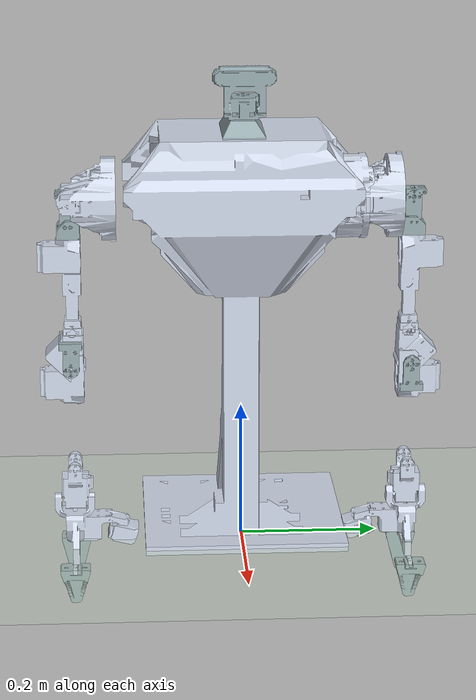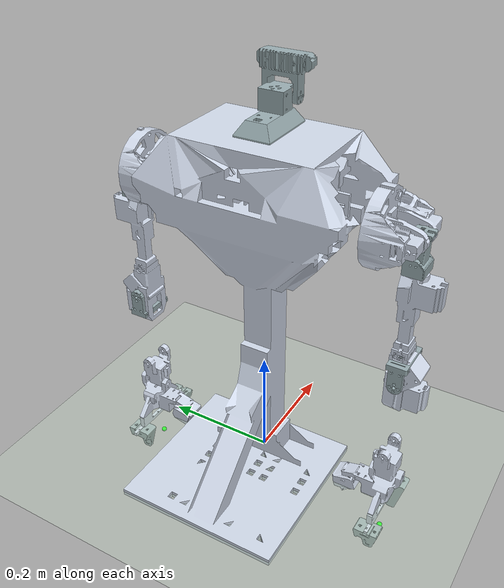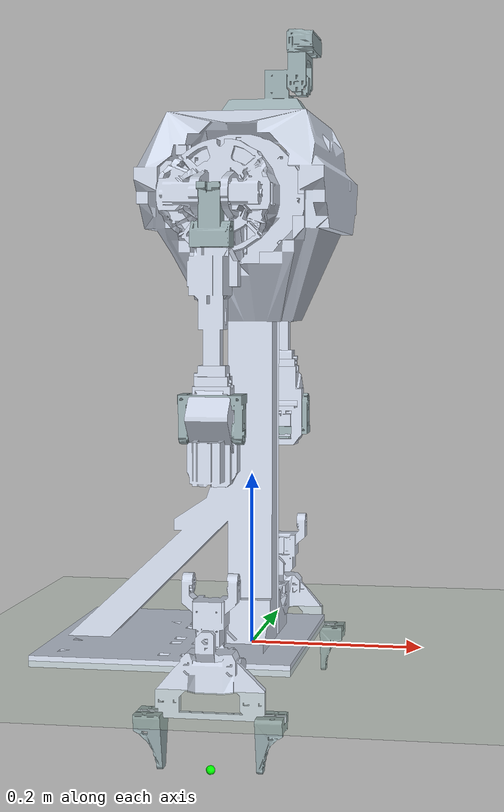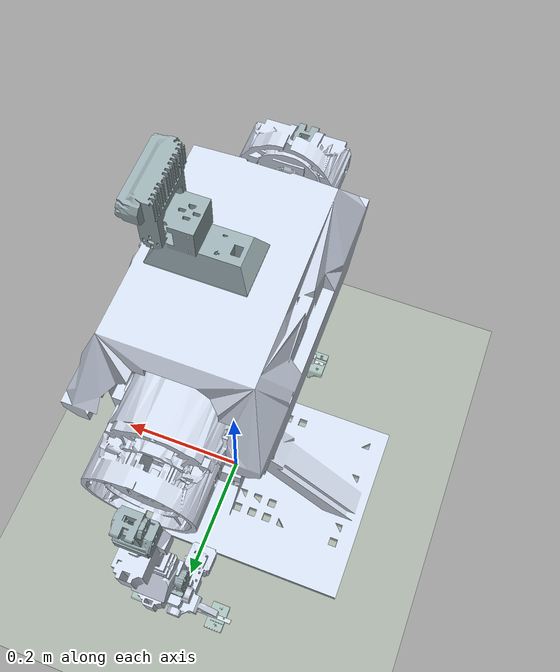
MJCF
<mujoco model="lingyue_urdf_1.0">
  <compiler angle="radian" meshdir="../../meshes/Bessica_D_v1_1/SkeletonOnly/"/>

  <asset>
    <mesh name="base_link" file="base_link.STL"/>
    <mesh name="head" file="head.STL"/>
    <mesh name="right_arm_base_link" file="right_arm_base_link.STL"/>
    <mesh name="right_arm_link1" file="right_arm_link1.STL"/>
    <mesh name="right_arm_link2" file="right_arm_link2.STL"/>
    <mesh name="right_arm_link3" file="right_arm_link3.STL"/>
    <mesh name="right_arm_link4" file="right_arm_link4.STL"/>
    <mesh name="right_arm_link5" file="right_arm_link5.STL"/>
    <mesh name="right_arm_link6" file="right_arm_link6.STL"/>
    <mesh name="right_arm_link7" file="right_arm_link7.STL"/>
    <mesh name="right_arm_gripper_left_finger" file="right_arm_gripper_left_finger.STL"/>
    <mesh name="right_arm_gripper_right_finger" file="right_arm_gripper_right_finger.STL"/>
    <mesh name="left_arm_base_link" file="left_arm_base_link.STL"/>
    <mesh name="left_arm_link1" file="left_arm_link1.STL"/>
    <mesh name="left_arm_link2" file="left_arm_link2.STL"/>
    <mesh name="left_arm_link3" file="left_arm_link3.STL"/>
    <mesh name="left_arm_link4" file="left_arm_link4.STL"/>
    <mesh name="left_arm_link5" file="left_arm_link5.STL"/>
    <mesh name="left_arm_link6" file="left_arm_link6.STL"/>
    <mesh name="left_arm_link7" file="left_arm_link7.STL"/>
    <mesh name="left_arm_gripper_right_finger" file="left_arm_gripper_right_finger.STL"/>
    <mesh name="left_arm_gripper_left_finger" file="left_arm_gripper_left_finger.STL"/>
    <texture builtin="gradient" height="100" rgb1=".4 .5 .6" rgb2="0 0 0" type="skybox" width="100" />
    <texture builtin="checker" height="100" name="texplane" rgb1="1 1 1" rgb2=".8 .9 1" type="2d" width="100" />
    <material name="MatPlane" reflectance="0.5" texrepeat="1 1" texture="texplane" texuniform="true" />
    <material name="white" rgba="1 1 1 1" shininess="0.5" specular="0.1" />
    <material name="black" rgba="0.25 0.25 0.25 1" shininess="0.2" specular="0.05" />
    <material name="invisible" rgba="1 1 1 0" shininess="0" specular="0" />
  </asset>

  <worldbody>
    <geom conaffinity="1" condim="3" contype="1" friction="1 .1 .1" group="2" material="MatPlane" name="floor" pos="0 0 0" rgba="0.8 0.9 0.8 1" size="10 10 0.125" type="plane" />
    <light castshadow="false" cutoff="100" diffuse="1 1 1" dir="-0 0 -1.3" directional="true" exponent="1" pos="0 0 1.3" specular=".1 .1 .1" />
    <body name="base_link" pos="0 0 0">
      <geom type="mesh" contype="0" conaffinity="0" group="1" density="0" rgba="0.807843 0.843137 0.905882 1" mesh="base_link"/>
      <geom type="mesh" rgba="0.807843 0.843137 0.905882 1" mesh="base_link"/>
      <geom pos="0.0608245 0.00175926 0.700041" type="mesh" contype="0" conaffinity="0" group="1" density="0" rgba="0.592157 0.666667 0.682353 1" mesh="head"/>
      <geom pos="0.0608245 0.00175926 0.700041" type="mesh" rgba="0.592157 0.666667 0.682353 1" mesh="head"/>
      <geom pos="0 -0.09 0.5145" quat="0 0 0 -1" type="mesh" contype="0" conaffinity="0" group="1" density="0" rgba="0.807843 0.843137 0.905882 1" mesh="right_arm_base_link"/>
      <geom pos="0 -0.09 0.5145" quat="0 0 0 -1" type="mesh" rgba="0.807843 0.843137 0.905882 1" mesh="right_arm_base_link"/>
      <geom pos="1.06667e-08 0.09 0.5145" quat="0 0 -0.707107 -0.707107" type="mesh" contype="0" conaffinity="0" group="1" density="0" rgba="0.807843 0.843137 0.905882 1" mesh="left_arm_base_link"/>
      <geom pos="1.06667e-08 0.09 0.5145" quat="0 0 -0.707107 -0.707107" type="mesh" rgba="0.807843 0.843137 0.905882 1" mesh="left_arm_base_link"/>
      <body name="right_arm_link1" pos="5e-05 -0.2046 0.5145" quat="0 0 -1 0">
        <inertial pos="0.000110936 -0.00312061 0.000177914" quat="0.503324 0.499404 0.49881 0.498447" mass="0.208266" diaginertia="0.00034002 0.000262863 0.000150646"/>
        <joint name="right_arm_joint1" pos="0 0 0" axis="0 1 0" range="-2.14 2.14" actuatorfrcrange="-5 5"/>
        <geom type="mesh" contype="0" conaffinity="0" group="1" density="0" rgba="0.807843 0.843137 0.905882 1" mesh="right_arm_link1"/>
        <geom type="mesh" rgba="0.807843 0.843137 0.905882 1" mesh="right_arm_link1"/>
        <body name="right_arm_link2" pos="0 -0.04286 0" quat="0 0.707107 0 -0.707107">
          <inertial pos="-0.0297081 0.000293735 0.000469869" quat="0.512721 0.46754 0.480696 0.536148" mass="0.0472691" diaginertia="1.62077e-05 1.58746e-05 7.75482e-06"/>
          <joint name="right_arm_joint2" pos="0 0 0" axis="0 0 -1" range="-2.14 2.14" actuatorfrcrange="-5 5"/>
          <geom type="mesh" contype="0" conaffinity="0" group="1" density="0" rgba="0.592157 0.666667 0.682353 1" mesh="right_arm_link2"/>
          <geom type="mesh" rgba="0.592157 0.666667 0.682353 1" mesh="right_arm_link2"/>
          <body name="right_arm_link3" pos="-0.06455 0 0.0003" quat="0.5 0.5 -0.5 -0.5">
            <inertial pos="-0.00359313 -0.000221914 0.094469" quat="0.709839 0.0300787 0.0347342 0.702864" mass="0.140452" diaginertia="8.80484e-05 7.8681e-05 5.52303e-05"/>
            <joint name="right_arm_joint3" pos="0 0 0" axis="0 0 -1" range="-2.14 2.14" actuatorfrcrange="-5 5"/>
            <geom type="mesh" contype="0" conaffinity="0" group="1" density="0" rgba="0.807843 0.843137 0.905882 1" mesh="right_arm_link3"/>
            <geom type="mesh" rgba="0.807843 0.843137 0.905882 1" mesh="right_arm_link3"/>
            <body name="right_arm_link4" pos="-1.89942e-05 -5e-05 0.1816" quat="0.707107 -0.707107 0 0">
              <inertial pos="-2.80211e-05 -0.0241583 -4.84137e-05" quat="1 0 0 0.000169429" mass="0.0427207" diaginertia="1.04868e-05 8.49768e-06 8.00565e-06"/>
              <joint name="right_arm_joint4" pos="0 0 0" axis="0 0 1" range="-2.14 2.14" actuatorfrcrange="-5 5"/>
              <geom type="mesh" contype="0" conaffinity="0" group="1" density="0" rgba="0.592157 0.666667 0.682353 1" mesh="right_arm_link4"/>
              <geom type="mesh" rgba="0.592157 0.666667 0.682353 1" mesh="right_arm_link4"/>
              <body name="right_arm_link5" pos="0 -0.0488 -0.0001" quat="0.707107 -0.707107 0 0">
                <inertial pos="-0.00180911 0.000196787 -0.0430793" quat="0.96714 0.0368465 -0.108778 -0.226827" mass="0.110397" diaginertia="8.7423e-05 8.69117e-05 4.35431e-05"/>
                <joint name="right_arm_joint5" pos="0 0 0" axis="0 0 1" range="-2.14 2.14" actuatorfrcrange="-5 5"/>
                <geom type="mesh" contype="0" conaffinity="0" group="1" density="0" rgba="0.807843 0.843137 0.905882 1" mesh="right_arm_link5"/>
                <geom type="mesh" rgba="0.807843 0.843137 0.905882 1" mesh="right_arm_link5"/>
                <body name="right_arm_link6" pos="0.00289 0.00207607 -0.10801" quat="0.707107 0.707107 0 0">
                  <inertial pos="0.000365898 -0.0257376 -4.10017e-05" quat="0.999601 0.00397576 0.00062209 -0.0279465" mass="0.0345707" diaginertia="1.56449e-05 1.27188e-05 9.19996e-06"/>
                  <joint name="right_arm_joint6" pos="0 0 0" axis="0 0 1" range="-2.14 2.14" actuatorfrcrange="-5 5"/>
                  <geom type="mesh" contype="0" conaffinity="0" group="1" density="0" rgba="0.807843 0.843137 0.905882 1" mesh="right_arm_link6"/>
                  <geom type="mesh" rgba="0.807843 0.843137 0.905882 1" mesh="right_arm_link6"/>
                  <body name="right_arm_link7" pos="-0.0015 -0.05561 0" quat="0.5 -0.5 0.5 -0.5">
                    <inertial pos="0.0415076 0.000152835 -0.0262967" quat="0.698357 0.698702 0.109714 -0.109886" mass="0.134443" diaginertia="9.59304e-05 8.33778e-05 4.31456e-05"/>
                    <joint name="right_arm_joint7" pos="0 0 0" axis="0 0 -1" range="-2.14 2.14" actuatorfrcrange="-5 5"/>
                    <geom type="mesh" contype="0" conaffinity="0" group="1" density="0" rgba="0.807843 0.843137 0.905882 1" mesh="right_arm_link7"/>
                    <geom type="mesh" rgba="0.807843 0.843137 0.905882 1" mesh="right_arm_link7"/>
                    <geom size="0.005" pos="0.14128 0 -0.00015" quat="-3.67321e-06 -1 0 0" contype="0" conaffinity="0" group="1" density="0" rgba="0 1 0 1"/>
                    <body name="right_arm_gripper_left_finger" pos="0.14128 0.0505 -0.00015" quat="0.707105 0.707108 0 0">
                      <inertial pos="-0.0434087 -1.55043e-08 -0.0106596" quat="1.78481e-06 0.569751 -6.4369e-06 0.821818" mass="0.0256463" diaginertia="8.50963e-06 6.46826e-06 4.6607e-06"/>
                      <joint name="right_arm_gripper_joint1" pos="0 0 0" axis="0 0.054375 -0.998521" type="slide" range="-0.05 0" actuatorfrcrange="-5 5"/>
                      <geom type="mesh" contype="0" conaffinity="0" group="1" density="0" rgba="0.592157 0.666667 0.682353 1" mesh="right_arm_gripper_left_finger"/>
                      <geom type="mesh" rgba="0.592157 0.666667 0.682353 1" mesh="right_arm_gripper_left_finger"/>
                    </body>
                    <body name="right_arm_gripper_right_finger" pos="0.14128 -0.0505 -0.00015" quat="0.707105 -0.707108 0 0">
                      <inertial pos="-0.0434087 -1.55043e-08 -0.0106596" quat="1.78481e-06 0.569751 -6.4369e-06 0.821818" mass="0.0256463" diaginertia="8.50963e-06 6.46826e-06 4.6607e-06"/>
                      <joint name="right_arm_gripper_joint2" pos="0 0 0" axis="0 -0.054375 0.998521" type="slide" range="0 0.05" actuatorfrcrange="-5 5"/>
                      <geom type="mesh" contype="0" conaffinity="0" group="1" density="0" rgba="0.592157 0.666667 0.682353 1" mesh="right_arm_gripper_right_finger"/>
                      <geom type="mesh" rgba="0.592157 0.666667 0.682353 1" mesh="right_arm_gripper_right_finger"/>
                    </body>
                  </body>
                </body>
              </body>
            </body>
          </body>
        </body>
      </body>
      <body name="left_arm_link1" pos="-4.99893e-05 0.2046 0.5145" quat="0 0 -0.707107 -0.707107">
        <inertial pos="-0.000114066 -0.000187362 0.00370369" quat="-0.00280195 0.709053 -0.000282862 0.70515" mass="0.197841" diaginertia="0.000335797 0.000260031 0.000148034"/>
        <joint name="left_arm_joint1" pos="0 0 0" axis="0 0 1" range="-2.14 2.14" actuatorfrcrange="-5 5"/>
        <geom type="mesh" contype="0" conaffinity="0" group="1" density="0" rgba="0.807843 0.843137 0.905882 1" mesh="left_arm_link1"/>
        <geom type="mesh" rgba="0.807843 0.843137 0.905882 1" mesh="left_arm_link1"/>
        <body name="left_arm_link2" pos="0 0 0.04286" quat="0.5 0.5 0.5 0.5">
          <inertial pos="-0.0297081 0.000293735 0.000469869" quat="0.512721 0.46754 0.480696 0.536148" mass="0.0472691" diaginertia="1.62077e-05 1.58746e-05 7.75482e-06"/>
          <joint name="left_arm_joint2" pos="0 0 0" axis="0 0 1" range="-2.14 2.14" actuatorfrcrange="-5 5"/>
          <geom type="mesh" contype="0" conaffinity="0" group="1" density="0" rgba="0.592157 0.666667 0.682353 1" mesh="left_arm_link2"/>
          <geom type="mesh" rgba="0.592157 0.666667 0.682353 1" mesh="left_arm_link2"/>
          <body name="left_arm_link3" pos="-0.06455 0 0.0003" quat="0.5 0.5 -0.5 -0.5">
            <inertial pos="-0.00359313 -0.000221914 0.094469" quat="0.709839 0.0300787 0.0347342 0.702864" mass="0.140452" diaginertia="8.80484e-05 7.8681e-05 5.52303e-05"/>
            <joint name="left_arm_joint3" pos="0 0 0" axis="0 0 -1" range="-2.14 2.14" actuatorfrcrange="-5 5"/>
            <geom type="mesh" contype="0" conaffinity="0" group="1" density="0" rgba="0.807843 0.843137 0.905882 1" mesh="left_arm_link3"/>
            <geom type="mesh" rgba="0.807843 0.843137 0.905882 1" mesh="left_arm_link3"/>
            <body name="left_arm_link4" pos="-1.89942e-05 -5e-05 0.1816" quat="0.707107 -0.707107 0 0">
              <inertial pos="-2.80211e-05 -0.0241583 -4.84137e-05" quat="1 0 0 0.000169429" mass="0.0427207" diaginertia="1.04868e-05 8.49768e-06 8.00565e-06"/>
              <joint name="left_arm_joint4" pos="0 0 0" axis="0 0 -1" range="-2.14 2.14" actuatorfrcrange="-5 5"/>
              <geom type="mesh" contype="0" conaffinity="0" group="1" density="0" rgba="0.592157 0.666667 0.682353 1" mesh="left_arm_link4"/>
              <geom type="mesh" rgba="0.592157 0.666667 0.682353 1" mesh="left_arm_link4"/>
              <body name="left_arm_link5" pos="0 -0.0488 -0.0001" quat="0.707107 -0.707107 0 0">
                <inertial pos="-0.00180911 0.000196787 -0.0430793" quat="0.96714 0.0368465 -0.108778 -0.226827" mass="0.110397" diaginertia="8.7423e-05 8.69117e-05 4.35431e-05"/>
                <joint name="left_arm_joint5" pos="0 0 0" axis="0 0 1" range="-2.14 2.14" actuatorfrcrange="-5 5"/>
                <geom type="mesh" contype="0" conaffinity="0" group="1" density="0" rgba="0.807843 0.843137 0.905882 1" mesh="left_arm_link5"/>
                <geom type="mesh" rgba="0.807843 0.843137 0.905882 1" mesh="left_arm_link5"/>
                <body name="left_arm_link6" pos="0.00289 0.00207607 -0.10801" quat="0.707107 0.707107 0 0">
                  <inertial pos="0.000365898 -0.0257376 -4.10017e-05" quat="0.999601 0.00397576 0.000622093 -0.0279465" mass="0.0345707" diaginertia="1.56449e-05 1.27188e-05 9.19996e-06"/>
                  <joint name="left_arm_joint6" pos="0 0 0" axis="0 0 -1" range="-2.14 2.14" actuatorfrcrange="-5 5"/>
                  <geom type="mesh" contype="0" conaffinity="0" group="1" density="0" rgba="0.807843 0.843137 0.905882 1" mesh="left_arm_link6"/>
                  <geom type="mesh" rgba="0.807843 0.843137 0.905882 1" mesh="left_arm_link6"/>
                  <body name="left_arm_link7" pos="-0.0015 -0.05561 0.00375195" quat="0.5 -0.5 0.5 -0.5">
                    <inertial pos="0.0417512 0.00390925 -0.0266716" quat="0.697385 0.697718 0.115769 -0.115941" mass="0.130828" diaginertia="9.49108e-05 8.29883e-05 4.23029e-05"/>
                    <joint name="left_arm_joint7" pos="0 0 0" axis="0 0 -1" range="-2.14 2.14" actuatorfrcrange="-5 5"/>
                    <geom type="mesh" contype="0" conaffinity="0" group="1" density="0" rgba="0.807843 0.843137 0.905882 1" mesh="left_arm_link7"/>
                    <geom type="mesh" rgba="0.807843 0.843137 0.905882 1" mesh="left_arm_link7"/>
                    <geom size="0.005" pos="0.14128 0.0037519 -0.00015" quat="-3.67321e-06 1 0 0" contype="0" conaffinity="0" group="1" density="0" rgba="0 1 0 1"/>
                    <body name="left_arm_gripper_right_finger" pos="0.14128 -0.046748 -0.00015" quat="0.707105 -0.707108 0 0">
                      <inertial pos="-0.0434087 1.55043e-08 0.11166" quat="-6.4369e-06 0.821818 1.78481e-06 0.569751" mass="0.0256463" diaginertia="8.50963e-06 6.46826e-06 4.6607e-06"/>
                      <joint name="left_arm_gripper_joint1" pos="0 0 0" axis="0 0 1" type="slide" range="-0.05 0" actuatorfrcrange="-5 5"/>
                      <geom type="mesh" contype="0" conaffinity="0" group="1" density="0" rgba="0.592157 0.666667 0.682353 1" mesh="left_arm_gripper_right_finger"/>
                      <geom type="mesh" rgba="0.592157 0.666667 0.682353 1" mesh="left_arm_gripper_right_finger"/>
                    </body>
                    <body name="left_arm_gripper_left_finger" pos="0.14128 0.054252 -0.00015" quat="0.707105 0.707108 0 0">
                      <inertial pos="-0.0434087 1.55043e-08 0.11166" quat="-6.4369e-06 0.821818 1.78481e-06 0.569751" mass="0.0256463" diaginertia="8.50963e-06 6.46826e-06 4.6607e-06"/>
                      <joint name="left_arm_gripper_joint2" pos="0 0 0" axis="0 0 -1" type="slide" range="0 0.05" actuatorfrcrange="-5 5"/>
                      <geom type="mesh" contype="0" conaffinity="0" group="1" density="0" rgba="0.592157 0.666667 0.682353 1" mesh="left_arm_gripper_left_finger"/>
                      <geom type="mesh" rgba="0.592157 0.666667 0.682353 1" mesh="left_arm_gripper_left_finger"/>
                    </body>
                  </body>
                </body>
              </body>
            </body>
          </body>
        </body>
      </body>
    </body>
  </worldbody>

  <contact>
    <exclude body1="base_link" body2="left_arm_link1" />
    <exclude body1="left_arm_link1" body2="left_arm_link2" />
    <exclude body1="left_arm_link1" body2="left_arm_link3" />
    <exclude body1="left_arm_link2" body2="left_arm_link3" />
    <exclude body1="left_arm_link3" body2="left_arm_link4" />
    <exclude body1="left_arm_link4" body2="left_arm_link5" />
    <exclude body1="left_arm_link5" body2="left_arm_link6" />
    <exclude body1="left_arm_link6" body2="left_arm_link7" />
    <exclude body1="base_link" body2="right_arm_link1" />
    <exclude body1="right_arm_link1" body2="right_arm_link2" />
    <exclude body1="right_arm_link1" body2="right_arm_link3" />
    <exclude body1="right_arm_link2" body2="right_arm_link3" />
    <exclude body1="right_arm_link3" body2="right_arm_link4" />
    <exclude body1="right_arm_link4" body2="right_arm_link5" />
    <exclude body1="right_arm_link5" body2="right_arm_link6" />
    <exclude body1="right_arm_link6" body2="right_arm_link7" />
  </contact>

</mujoco>
